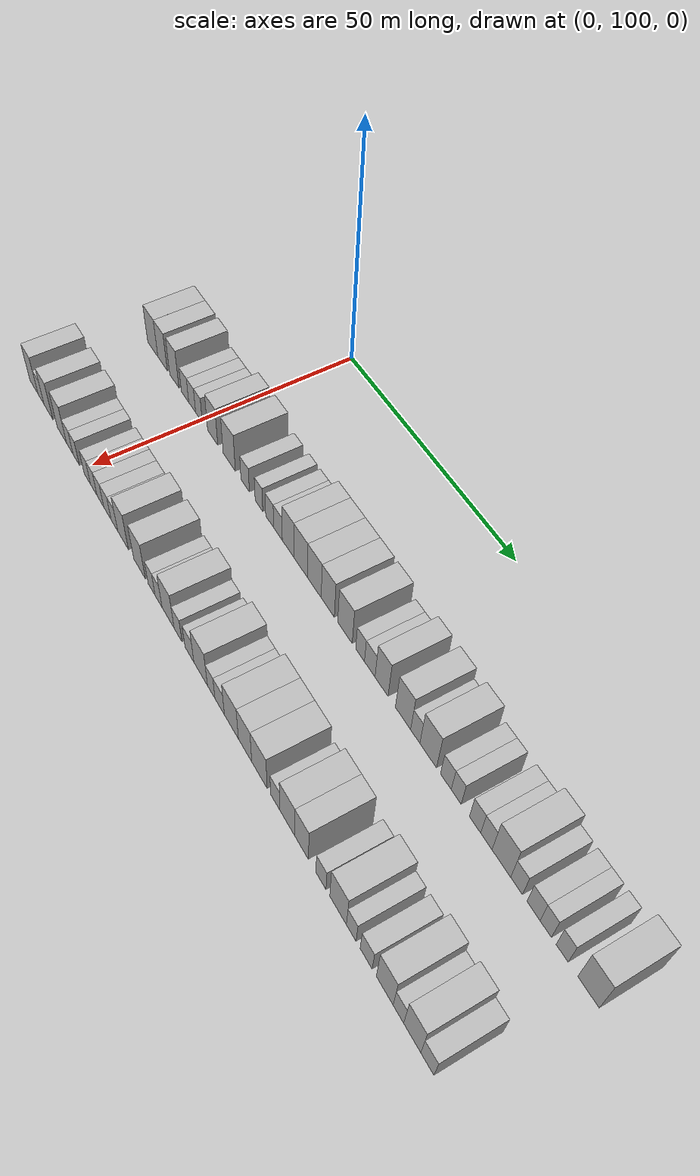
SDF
<sdf version="1.6">
 <world name="default">
  <model name="building_67">
   <static>1</static>
   <pose>25.0000 80.7077 0 0.000000 0.000000 0.000000</pose>
   <link name="link">
    <pose>0 0 4.50 0 0 0</pose>
    <collision name="collision"><geometry><box><size>10.0000 4.2711 9.0000</size></box></geometry></collision>
    <visual name="visual">
     <cast_shadows>0</cast_shadows>
     <geometry><box><size>10.0000 4.2711 9.0000</size></box></geometry>
     <material>
      <script>
       <uri>model://HANNAS_wall/materials/scripts</uri>
       <uri>model://HANNAS_wall/materials/textures</uri>
       <name>vrc/HANNAS_wall</name>
      </script>
     </material>
    </visual>
   </link>
  </model>
  <model name="building_68">
   <static>1</static>
   <pose>25.0000 84.7765 0 0.000000 0.000000 0.000000</pose>
   <link name="link">
    <pose>0 0 4.50 0 0 0</pose>
    <collision name="collision"><geometry><box><size>10.0000 3.8663 9.0000</size></box></geometry></collision>
    <visual name="visual">
     <cast_shadows>0</cast_shadows>
     <geometry><box><size>10.0000 3.8663 9.0000</size></box></geometry>
     <material>
      <script>
       <uri>model://HANNAS_wall/materials/scripts</uri>
       <uri>model://HANNAS_wall/materials/textures</uri>
       <name>vrc/HANNAS_wall</name>
      </script>
     </material>
    </visual>
   </link>
  </model>
  <model name="building_69">
   <static>1</static>
   <pose>25.0000 89.5584 0 0.000000 0.000000 0.000000</pose>
   <link name="link">
    <pose>0 0 4.50 0 0 0</pose>
    <collision name="collision"><geometry><box><size>10.0000 3.6976 9.0000</size></box></geometry></collision>
    <visual name="visual">
     <cast_shadows>0</cast_shadows>
     <geometry><box><size>10.0000 3.6976 9.0000</size></box></geometry>
     <material>
      <script>
       <uri>model://HANNAS_wall/materials/scripts</uri>
       <uri>model://HANNAS_wall/materials/textures</uri>
       <name>vrc/HANNAS_wall</name>
      </script>
     </material>
    </visual>
   </link>
  </model>
  <model name="building_70">
   <static>1</static>
   <pose>25.0000 93.8369 0 0.000000 0.000000 0.000000</pose>
   <link name="link">
    <pose>0 0 3.00 0 0 0</pose>
    <collision name="collision"><geometry><box><size>10.0000 2.8594 6.0000</size></box></geometry></collision>
    <visual name="visual">
     <cast_shadows>0</cast_shadows>
     <geometry><box><size>10.0000 2.8594 6.0000</size></box></geometry>
     <material>
      <script>
       <uri>model://HANNAS_wall/materials/scripts</uri>
       <uri>model://HANNAS_wall/materials/textures</uri>
       <name>vrc/HANNAS_wall</name>
      </script>
     </material>
    </visual>
   </link>
  </model>
  <model name="building_71">
   <static>1</static>
   <pose>25.0000 96.6100 0 0.000000 0.000000 0.000000</pose>
   <link name="link">
    <pose>0 0 3.00 0 0 0</pose>
    <collision name="collision"><geometry><box><size>10.0000 2.6867 6.0000</size></box></geometry></collision>
    <visual name="visual">
     <cast_shadows>0</cast_shadows>
     <geometry><box><size>10.0000 2.6867 6.0000</size></box></geometry>
     <material>
      <script>
       <uri>model://HANNAS_wall/materials/scripts</uri>
       <uri>model://HANNAS_wall/materials/textures</uri>
       <name>vrc/HANNAS_wall</name>
      </script>
     </material>
    </visual>
   </link>
  </model>
  <model name="building_72">
   <static>1</static>
   <pose>25.0000 99.2339 0 0.000000 0.000000 0.000000</pose>
   <link name="link">
    <pose>0 0 3.00 0 0 0</pose>
    <collision name="collision"><geometry><box><size>10.0000 2.5612 6.0000</size></box></geometry></collision>
    <visual name="visual">
     <cast_shadows>0</cast_shadows>
     <geometry><box><size>10.0000 2.5612 6.0000</size></box></geometry>
     <material>
      <script>
       <uri>model://HANNAS_wall/materials/scripts</uri>
       <uri>model://HANNAS_wall/materials/textures</uri>
       <name>vrc/HANNAS_wall</name>
      </script>
     </material>
    </visual>
   </link>
  </model>
  <model name="building_73">
   <static>1</static>
   <pose>25.0000 104.4032 0 0.000000 0.000000 0.000000</pose>
   <link name="link">
    <pose>0 0 4.50 0 0 0</pose>
    <collision name="collision"><geometry><box><size>10.0000 3.7774 9.0000</size></box></geometry></collision>
    <visual name="visual">
     <cast_shadows>0</cast_shadows>
     <geometry><box><size>10.0000 3.7774 9.0000</size></box></geometry>
     <material>
      <script>
       <uri>model://HANNAS_wall/materials/scripts</uri>
       <uri>model://HANNAS_wall/materials/textures</uri>
       <name>vrc/HANNAS_wall</name>
      </script>
     </material>
    </visual>
   </link>
  </model>
  <model name="building_74">
   <static>1</static>
   <pose>25.0000 110.4931 0 0.000000 0.000000 0.000000</pose>
   <link name="link">
    <pose>0 0 4.50 0 0 0</pose>
    <collision name="collision"><geometry><box><size>10.0000 4.4025 9.0000</size></box></geometry></collision>
    <visual name="visual">
     <cast_shadows>0</cast_shadows>
     <geometry><box><size>10.0000 4.4025 9.0000</size></box></geometry>
     <material>
      <script>
       <uri>model://HANNAS_wall/materials/scripts</uri>
       <uri>model://HANNAS_wall/materials/textures</uri>
       <name>vrc/HANNAS_wall</name>
      </script>
     </material>
    </visual>
   </link>
  </model>
  <model name="building_75">
   <static>1</static>
   <pose>25.0000 116.1725 0 0.000000 0.000000 0.000000</pose>
   <link name="link">
    <pose>0 0 3.00 0 0 0</pose>
    <collision name="collision"><geometry><box><size>10.0000 2.9564 6.0000</size></box></geometry></collision>
    <visual name="visual">
     <cast_shadows>0</cast_shadows>
     <geometry><box><size>10.0000 2.9564 6.0000</size></box></geometry>
     <material>
      <script>
       <uri>model://HANNAS_wall/materials/scripts</uri>
       <uri>model://HANNAS_wall/materials/textures</uri>
       <name>vrc/HANNAS_wall</name>
      </script>
     </material>
    </visual>
   </link>
  </model>
  <model name="building_76">
   <static>1</static>
   <pose>25.0000 120.9488 0 0.000000 0.000000 0.000000</pose>
   <link name="link">
    <pose>0 0 3.00 0 0 0</pose>
    <collision name="collision"><geometry><box><size>10.0000 2.5962 6.0000</size></box></geometry></collision>
    <visual name="visual">
     <cast_shadows>0</cast_shadows>
     <geometry><box><size>10.0000 2.5962 6.0000</size></box></geometry>
     <material>
      <script>
       <uri>model://HANNAS_wall/materials/scripts</uri>
       <uri>model://HANNAS_wall/materials/textures</uri>
       <name>vrc/HANNAS_wall</name>
      </script>
     </material>
    </visual>
   </link>
  </model>
  <model name="building_77">
   <static>1</static>
   <pose>25.0000 124.5761 0 0.000000 0.000000 0.000000</pose>
   <link name="link">
    <pose>0 0 3.00 0 0 0</pose>
    <collision name="collision"><geometry><box><size>10.0000 2.6584 6.0000</size></box></geometry></collision>
    <visual name="visual">
     <cast_shadows>0</cast_shadows>
     <geometry><box><size>10.0000 2.6584 6.0000</size></box></geometry>
     <material>
      <script>
       <uri>model://HANNAS_wall/materials/scripts</uri>
       <uri>model://HANNAS_wall/materials/textures</uri>
       <name>vrc/HANNAS_wall</name>
      </script>
     </material>
    </visual>
   </link>
  </model>
  <model name="building_78">
   <static>1</static>
   <pose>25.0000 127.3383 0 0.000000 0.000000 0.000000</pose>
   <link name="link">
    <pose>0 0 3.00 0 0 0</pose>
    <collision name="collision"><geometry><box><size>10.0000 2.8662 6.0000</size></box></geometry></collision>
    <visual name="visual">
     <cast_shadows>0</cast_shadows>
     <geometry><box><size>10.0000 2.8662 6.0000</size></box></geometry>
     <material>
      <script>
       <uri>model://HANNAS_wall/materials/scripts</uri>
       <uri>model://HANNAS_wall/materials/textures</uri>
       <name>vrc/HANNAS_wall</name>
      </script>
     </material>
    </visual>
   </link>
  </model>
  <model name="building_79">
   <static>1</static>
   <pose>25.0000 130.6202 0 0.000000 0.000000 0.000000</pose>
   <link name="link">
    <pose>0 0 4.50 0 0 0</pose>
    <collision name="collision"><geometry><box><size>10.0000 3.6975 9.0000</size></box></geometry></collision>
    <visual name="visual">
     <cast_shadows>0</cast_shadows>
     <geometry><box><size>10.0000 3.6975 9.0000</size></box></geometry>
     <material>
      <script>
       <uri>model://HANNAS_wall/materials/scripts</uri>
       <uri>model://HANNAS_wall/materials/textures</uri>
       <name>vrc/HANNAS_wall</name>
      </script>
     </material>
    </visual>
   </link>
  </model>
  <model name="building_80">
   <static>1</static>
   <pose>25.0000 134.6541 0 0.000000 0.000000 0.000000</pose>
   <link name="link">
    <pose>0 0 4.50 0 0 0</pose>
    <collision name="collision"><geometry><box><size>10.0000 4.3703 9.0000</size></box></geometry></collision>
    <visual name="visual">
     <cast_shadows>0</cast_shadows>
     <geometry><box><size>10.0000 4.3703 9.0000</size></box></geometry>
     <material>
      <script>
       <uri>model://HANNAS_wall/materials/scripts</uri>
       <uri>model://HANNAS_wall/materials/textures</uri>
       <name>vrc/HANNAS_wall</name>
      </script>
     </material>
    </visual>
   </link>
  </model>
  <model name="building_81">
   <static>1</static>
   <pose>25.0000 138.9686 0 0.000000 0.000000 0.000000</pose>
   <link name="link">
    <pose>0 0 4.50 0 0 0</pose>
    <collision name="collision"><geometry><box><size>10.0000 4.2588 9.0000</size></box></geometry></collision>
    <visual name="visual">
     <cast_shadows>0</cast_shadows>
     <geometry><box><size>10.0000 4.2588 9.0000</size></box></geometry>
     <material>
      <script>
       <uri>model://HANNAS_wall/materials/scripts</uri>
       <uri>model://HANNAS_wall/materials/textures</uri>
       <name>vrc/HANNAS_wall</name>
      </script>
     </material>
    </visual>
   </link>
  </model>
  <model name="building_82">
   <static>1</static>
   <pose>25.0000 143.0989 0 0.000000 0.000000 0.000000</pose>
   <link name="link">
    <pose>0 0 4.50 0 0 0</pose>
    <collision name="collision"><geometry><box><size>10.0000 4.0017 9.0000</size></box></geometry></collision>
    <visual name="visual">
     <cast_shadows>0</cast_shadows>
     <geometry><box><size>10.0000 4.0017 9.0000</size></box></geometry>
     <material>
      <script>
       <uri>model://HANNAS_wall/materials/scripts</uri>
       <uri>model://HANNAS_wall/materials/textures</uri>
       <name>vrc/HANNAS_wall</name>
      </script>
     </material>
    </visual>
   </link>
  </model>
  <model name="building_83">
   <static>1</static>
   <pose>25.0000 148.2334 0 0.000000 0.000000 0.000000</pose>
   <link name="link">
    <pose>0 0 4.50 0 0 0</pose>
    <collision name="collision"><geometry><box><size>10.0000 4.2673 9.0000</size></box></geometry></collision>
    <visual name="visual">
     <cast_shadows>0</cast_shadows>
     <geometry><box><size>10.0000 4.2673 9.0000</size></box></geometry>
     <material>
      <script>
       <uri>model://HANNAS_wall/materials/scripts</uri>
       <uri>model://HANNAS_wall/materials/textures</uri>
       <name>vrc/HANNAS_wall</name>
      </script>
     </material>
    </visual>
   </link>
  </model>
  <model name="building_84">
   <static>1</static>
   <pose>25.0000 152.6312 0 0.000000 0.000000 0.000000</pose>
   <link name="link">
    <pose>0 0 3.00 0 0 0</pose>
    <collision name="collision"><geometry><box><size>10.0000 2.5284 6.0000</size></box></geometry></collision>
    <visual name="visual">
     <cast_shadows>0</cast_shadows>
     <geometry><box><size>10.0000 2.5284 6.0000</size></box></geometry>
     <material>
      <script>
       <uri>model://HANNAS_wall/materials/scripts</uri>
       <uri>model://HANNAS_wall/materials/textures</uri>
       <name>vrc/HANNAS_wall</name>
      </script>
     </material>
    </visual>
   </link>
  </model>
  <model name="building_85">
   <static>1</static>
   <pose>25.0000 155.3830 0 0.000000 0.000000 0.000000</pose>
   <link name="link">
    <pose>0 0 3.00 0 0 0</pose>
    <collision name="collision"><geometry><box><size>10.0000 2.9752 6.0000</size></box></geometry></collision>
    <visual name="visual">
     <cast_shadows>0</cast_shadows>
     <geometry><box><size>10.0000 2.9752 6.0000</size></box></geometry>
     <material>
      <script>
       <uri>model://HANNAS_wall/materials/scripts</uri>
       <uri>model://HANNAS_wall/materials/textures</uri>
       <name>vrc/HANNAS_wall</name>
      </script>
     </material>
    </visual>
   </link>
  </model>
  <model name="building_86">
   <static>1</static>
   <pose>25.0000 158.6770 0 0.000000 0.000000 0.000000</pose>
   <link name="link">
    <pose>0 0 4.50 0 0 0</pose>
    <collision name="collision"><geometry><box><size>10.0000 3.6129 9.0000</size></box></geometry></collision>
    <visual name="visual">
     <cast_shadows>0</cast_shadows>
     <geometry><box><size>10.0000 3.6129 9.0000</size></box></geometry>
     <material>
      <script>
       <uri>model://HANNAS_wall/materials/scripts</uri>
       <uri>model://HANNAS_wall/materials/textures</uri>
       <name>vrc/HANNAS_wall</name>
      </script>
     </material>
    </visual>
   </link>
  </model>
  <model name="building_87">
   <static>1</static>
   <pose>25.0000 164.5211 0 0.000000 0.000000 0.000000</pose>
   <link name="link">
    <pose>0 0 4.50 0 0 0</pose>
    <collision name="collision"><geometry><box><size>10.0000 4.0754 9.0000</size></box></geometry></collision>
    <visual name="visual">
     <cast_shadows>0</cast_shadows>
     <geometry><box><size>10.0000 4.0754 9.0000</size></box></geometry>
     <material>
      <script>
       <uri>model://HANNAS_wall/materials/scripts</uri>
       <uri>model://HANNAS_wall/materials/textures</uri>
       <name>vrc/HANNAS_wall</name>
      </script>
     </material>
    </visual>
   </link>
  </model>
  <model name="building_88">
   <static>1</static>
   <pose>25.0000 167.7697 0 0.000000 0.000000 0.000000</pose>
   <link name="link">
    <pose>0 0 3.00 0 0 0</pose>
    <collision name="collision"><geometry><box><size>10.0000 2.4216 6.0000</size></box></geometry></collision>
    <visual name="visual">
     <cast_shadows>0</cast_shadows>
     <geometry><box><size>10.0000 2.4216 6.0000</size></box></geometry>
     <material>
      <script>
       <uri>model://HANNAS_wall/materials/scripts</uri>
       <uri>model://HANNAS_wall/materials/textures</uri>
       <name>vrc/HANNAS_wall</name>
      </script>
     </material>
    </visual>
   </link>
  </model>
  <model name="building_89">
   <static>1</static>
   <pose>25.0000 171.1131 0 0.000000 0.000000 0.000000</pose>
   <link name="link">
    <pose>0 0 4.50 0 0 0</pose>
    <collision name="collision"><geometry><box><size>10.0000 4.2653 9.0000</size></box></geometry></collision>
    <visual name="visual">
     <cast_shadows>0</cast_shadows>
     <geometry><box><size>10.0000 4.2653 9.0000</size></box></geometry>
     <material>
      <script>
       <uri>model://HANNAS_wall/materials/scripts</uri>
       <uri>model://HANNAS_wall/materials/textures</uri>
       <name>vrc/HANNAS_wall</name>
      </script>
     </material>
    </visual>
   </link>
  </model>
  <model name="building_90">
   <static>1</static>
   <pose>25.0000 175.5952 0 0.000000 0.000000 0.000000</pose>
   <link name="link">
    <pose>0 0 3.00 0 0 0</pose>
    <collision name="collision"><geometry><box><size>10.0000 2.6990 6.0000</size></box></geometry></collision>
    <visual name="visual">
     <cast_shadows>0</cast_shadows>
     <geometry><box><size>10.0000 2.6990 6.0000</size></box></geometry>
     <material>
      <script>
       <uri>model://HANNAS_wall/materials/scripts</uri>
       <uri>model://HANNAS_wall/materials/textures</uri>
       <name>vrc/HANNAS_wall</name>
      </script>
     </material>
    </visual>
   </link>
  </model>
  <model name="building_91">
   <static>1</static>
   <pose>25.0000 178.1671 0 0.000000 0.000000 0.000000</pose>
   <link name="link">
    <pose>0 0 3.00 0 0 0</pose>
    <collision name="collision"><geometry><box><size>10.0000 2.4448 6.0000</size></box></geometry></collision>
    <visual name="visual">
     <cast_shadows>0</cast_shadows>
     <geometry><box><size>10.0000 2.4448 6.0000</size></box></geometry>
     <material>
      <script>
       <uri>model://HANNAS_wall/materials/scripts</uri>
       <uri>model://HANNAS_wall/materials/textures</uri>
       <name>vrc/HANNAS_wall</name>
      </script>
     </material>
    </visual>
   </link>
  </model>
  <model name="building_92">
   <static>1</static>
   <pose>25.0000 182.7265 0 0.000000 0.000000 0.000000</pose>
   <link name="link">
    <pose>0 0 3.00 0 0 0</pose>
    <collision name="collision"><geometry><box><size>10.0000 2.6738 6.0000</size></box></geometry></collision>
    <visual name="visual">
     <cast_shadows>0</cast_shadows>
     <geometry><box><size>10.0000 2.6738 6.0000</size></box></geometry>
     <material>
      <script>
       <uri>model://HANNAS_wall/materials/scripts</uri>
       <uri>model://HANNAS_wall/materials/textures</uri>
       <name>vrc/HANNAS_wall</name>
      </script>
     </material>
    </visual>
   </link>
  </model>
  <model name="building_93">
   <static>1</static>
   <pose>25.0000 185.3960 0 0.000000 0.000000 0.000000</pose>
   <link name="link">
    <pose>0 0 3.00 0 0 0</pose>
    <collision name="collision"><geometry><box><size>10.0000 2.6652 6.0000</size></box></geometry></collision>
    <visual name="visual">
     <cast_shadows>0</cast_shadows>
     <geometry><box><size>10.0000 2.6652 6.0000</size></box></geometry>
     <material>
      <script>
       <uri>model://HANNAS_wall/materials/scripts</uri>
       <uri>model://HANNAS_wall/materials/textures</uri>
       <name>vrc/HANNAS_wall</name>
      </script>
     </material>
    </visual>
   </link>
  </model>
  <model name="building_94">
   <static>1</static>
   <pose>25.0000 188.8733 0 0.000000 0.000000 0.000000</pose>
   <link name="link">
    <pose>0 0 4.50 0 0 0</pose>
    <collision name="collision"><geometry><box><size>10.0000 4.2894 9.0000</size></box></geometry></collision>
    <visual name="visual">
     <cast_shadows>0</cast_shadows>
     <geometry><box><size>10.0000 4.2894 9.0000</size></box></geometry>
     <material>
      <script>
       <uri>model://HANNAS_wall/materials/scripts</uri>
       <uri>model://HANNAS_wall/materials/textures</uri>
       <name>vrc/HANNAS_wall</name>
      </script>
     </material>
    </visual>
   </link>
  </model>
  <model name="building_95">
   <static>1</static>
   <pose>25.0000 192.3362 0 0.000000 0.000000 0.000000</pose>
   <link name="link">
    <pose>0 0 3.00 0 0 0</pose>
    <collision name="collision"><geometry><box><size>10.0000 2.6363 6.0000</size></box></geometry></collision>
    <visual name="visual">
     <cast_shadows>0</cast_shadows>
     <geometry><box><size>10.0000 2.6363 6.0000</size></box></geometry>
     <material>
      <script>
       <uri>model://HANNAS_wall/materials/scripts</uri>
       <uri>model://HANNAS_wall/materials/textures</uri>
       <name>vrc/HANNAS_wall</name>
      </script>
     </material>
    </visual>
   </link>
  </model>
  <model name="building_96">
   <static>1</static>
   <pose>25.0000 196.0877 0 0.000000 0.000000 0.000000</pose>
   <link name="link">
    <pose>0 0 3.00 0 0 0</pose>
    <collision name="collision"><geometry><box><size>10.0000 2.8668 6.0000</size></box></geometry></collision>
    <visual name="visual">
     <cast_shadows>0</cast_shadows>
     <geometry><box><size>10.0000 2.8668 6.0000</size></box></geometry>
     <material>
      <script>
       <uri>model://HANNAS_wall/materials/scripts</uri>
       <uri>model://HANNAS_wall/materials/textures</uri>
       <name>vrc/HANNAS_wall</name>
      </script>
     </material>
    </visual>
   </link>
  </model>
  <model name="building_97">
   <static>1</static>
   <pose>25.0000 198.7425 0 0.000000 0.000000 0.000000</pose>
   <link name="link">
    <pose>0 0 3.00 0 0 0</pose>
    <collision name="collision"><geometry><box><size>10.0000 2.4428 6.0000</size></box></geometry></collision>
    <visual name="visual">
     <cast_shadows>0</cast_shadows>
     <geometry><box><size>10.0000 2.4428 6.0000</size></box></geometry>
     <material>
      <script>
       <uri>model://HANNAS_wall/materials/scripts</uri>
       <uri>model://HANNAS_wall/materials/textures</uri>
       <name>vrc/HANNAS_wall</name>
      </script>
     </material>
    </visual>
   </link>
  </model>
  <model name="building_98">
   <static>1</static>
   <pose>25.0000 202.2255 0 0.000000 0.000000 0.000000</pose>
   <link name="link">
    <pose>0 0 3.00 0 0 0</pose>
    <collision name="collision"><geometry><box><size>10.0000 2.5232 6.0000</size></box></geometry></collision>
    <visual name="visual">
     <cast_shadows>0</cast_shadows>
     <geometry><box><size>10.0000 2.5232 6.0000</size></box></geometry>
     <material>
      <script>
       <uri>model://HANNAS_wall/materials/scripts</uri>
       <uri>model://HANNAS_wall/materials/textures</uri>
       <name>vrc/HANNAS_wall</name>
      </script>
     </material>
    </visual>
   </link>
  </model>
  <model name="building_99">
   <static>1</static>
   <pose>25.0000 207.6533 0 0.000000 0.000000 0.000000</pose>
   <link name="link">
    <pose>0 0 4.50 0 0 0</pose>
    <collision name="collision"><geometry><box><size>10.0000 4.3324 9.0000</size></box></geometry></collision>
    <visual name="visual">
     <cast_shadows>0</cast_shadows>
     <geometry><box><size>10.0000 4.3324 9.0000</size></box></geometry>
     <material>
      <script>
       <uri>model://HANNAS_wall/materials/scripts</uri>
       <uri>model://HANNAS_wall/materials/textures</uri>
       <name>vrc/HANNAS_wall</name>
      </script>
     </material>
    </visual>
   </link>
  </model>
  <model name="building_169">
   <static>1</static>
   <pose>47.0000 78.9601 0 0.000000 0.000000 0.000000</pose>
   <link name="link">
    <pose>0 0 4.50 0 0 0</pose>
    <collision name="collision"><geometry><box><size>10.0000 3.8229 9.0000</size></box></geometry></collision>
    <visual name="visual">
     <cast_shadows>0</cast_shadows>
     <geometry><box><size>10.0000 3.8229 9.0000</size></box></geometry>
     <material>
      <script>
       <uri>model://HANNAS_wall/materials/scripts</uri>
       <uri>model://HANNAS_wall/materials/textures</uri>
       <name>vrc/HANNAS_wall</name>
      </script>
     </material>
    </visual>
   </link>
  </model>
  <model name="building_170">
   <static>1</static>
   <pose>47.0000 82.2435 0 0.000000 0.000000 0.000000</pose>
   <link name="link">
    <pose>0 0 3.00 0 0 0</pose>
    <collision name="collision"><geometry><box><size>10.0000 2.7437 6.0000</size></box></geometry></collision>
    <visual name="visual">
     <cast_shadows>0</cast_shadows>
     <geometry><box><size>10.0000 2.7437 6.0000</size></box></geometry>
     <material>
      <script>
       <uri>model://HANNAS_wall/materials/scripts</uri>
       <uri>model://HANNAS_wall/materials/textures</uri>
       <name>vrc/HANNAS_wall</name>
      </script>
     </material>
    </visual>
   </link>
  </model>
  <model name="building_171">
   <static>1</static>
   <pose>47.0000 85.5752 0 0.000000 0.000000 0.000000</pose>
   <link name="link">
    <pose>0 0 4.50 0 0 0</pose>
    <collision name="collision"><geometry><box><size>10.0000 3.9197 9.0000</size></box></geometry></collision>
    <visual name="visual">
     <cast_shadows>0</cast_shadows>
     <geometry><box><size>10.0000 3.9197 9.0000</size></box></geometry>
     <material>
      <script>
       <uri>model://HANNAS_wall/materials/scripts</uri>
       <uri>model://HANNAS_wall/materials/textures</uri>
       <name>vrc/HANNAS_wall</name>
      </script>
     </material>
    </visual>
   </link>
  </model>
  <model name="building_172">
   <static>1</static>
   <pose>47.0000 91.5517 0 0.000000 0.000000 0.000000</pose>
   <link name="link">
    <pose>0 0 4.50 0 0 0</pose>
    <collision name="collision"><geometry><box><size>10.0000 4.0333 9.0000</size></box></geometry></collision>
    <visual name="visual">
     <cast_shadows>0</cast_shadows>
     <geometry><box><size>10.0000 4.0333 9.0000</size></box></geometry>
     <material>
      <script>
       <uri>model://HANNAS_wall/materials/scripts</uri>
       <uri>model://HANNAS_wall/materials/textures</uri>
       <name>vrc/HANNAS_wall</name>
      </script>
     </material>
    </visual>
   </link>
  </model>
  <model name="building_173">
   <static>1</static>
   <pose>47.0000 94.9659 0 0.000000 0.000000 0.000000</pose>
   <link name="link">
    <pose>0 0 3.00 0 0 0</pose>
    <collision name="collision"><geometry><box><size>10.0000 2.7952 6.0000</size></box></geometry></collision>
    <visual name="visual">
     <cast_shadows>0</cast_shadows>
     <geometry><box><size>10.0000 2.7952 6.0000</size></box></geometry>
     <material>
      <script>
       <uri>model://HANNAS_wall/materials/scripts</uri>
       <uri>model://HANNAS_wall/materials/textures</uri>
       <name>vrc/HANNAS_wall</name>
      </script>
     </material>
    </visual>
   </link>
  </model>
  <model name="building_174">
   <static>1</static>
   <pose>47.0000 97.6841 0 0.000000 0.000000 0.000000</pose>
   <link name="link">
    <pose>0 0 3.00 0 0 0</pose>
    <collision name="collision"><geometry><box><size>10.0000 2.6411 6.0000</size></box></geometry></collision>
    <visual name="visual">
     <cast_shadows>0</cast_shadows>
     <geometry><box><size>10.0000 2.6411 6.0000</size></box></geometry>
     <material>
      <script>
       <uri>model://HANNAS_wall/materials/scripts</uri>
       <uri>model://HANNAS_wall/materials/textures</uri>
       <name>vrc/HANNAS_wall</name>
      </script>
     </material>
    </visual>
   </link>
  </model>
  <model name="building_175">
   <static>1</static>
   <pose>47.0000 102.3219 0 0.000000 0.000000 0.000000</pose>
   <link name="link">
    <pose>0 0 3.00 0 0 0</pose>
    <collision name="collision"><geometry><box><size>10.0000 2.6346 6.0000</size></box></geometry></collision>
    <visual name="visual">
     <cast_shadows>0</cast_shadows>
     <geometry><box><size>10.0000 2.6346 6.0000</size></box></geometry>
     <material>
      <script>
       <uri>model://HANNAS_wall/materials/scripts</uri>
       <uri>model://HANNAS_wall/materials/textures</uri>
       <name>vrc/HANNAS_wall</name>
      </script>
     </material>
    </visual>
   </link>
  </model>
  <model name="building_176">
   <static>1</static>
   <pose>47.0000 104.9798 0 0.000000 0.000000 0.000000</pose>
   <link name="link">
    <pose>0 0 3.00 0 0 0</pose>
    <collision name="collision"><geometry><box><size>10.0000 2.6811 6.0000</size></box></geometry></collision>
    <visual name="visual">
     <cast_shadows>0</cast_shadows>
     <geometry><box><size>10.0000 2.6811 6.0000</size></box></geometry>
     <material>
      <script>
       <uri>model://HANNAS_wall/materials/scripts</uri>
       <uri>model://HANNAS_wall/materials/textures</uri>
       <name>vrc/HANNAS_wall</name>
      </script>
     </material>
    </visual>
   </link>
  </model>
  <model name="building_177">
   <static>1</static>
   <pose>47.0000 107.6602 0 0.000000 0.000000 0.000000</pose>
   <link name="link">
    <pose>0 0 3.00 0 0 0</pose>
    <collision name="collision"><geometry><box><size>10.0000 2.6797 6.0000</size></box></geometry></collision>
    <visual name="visual">
     <cast_shadows>0</cast_shadows>
     <geometry><box><size>10.0000 2.6797 6.0000</size></box></geometry>
     <material>
      <script>
       <uri>model://HANNAS_wall/materials/scripts</uri>
       <uri>model://HANNAS_wall/materials/textures</uri>
       <name>vrc/HANNAS_wall</name>
      </script>
     </material>
    </visual>
   </link>
  </model>
  <model name="building_178">
   <static>1</static>
   <pose>47.0000 110.4687 0 0.000000 0.000000 0.000000</pose>
   <link name="link">
    <pose>0 0 3.00 0 0 0</pose>
    <collision name="collision"><geometry><box><size>10.0000 2.9374 6.0000</size></box></geometry></collision>
    <visual name="visual">
     <cast_shadows>0</cast_shadows>
     <geometry><box><size>10.0000 2.9374 6.0000</size></box></geometry>
     <material>
      <script>
       <uri>model://HANNAS_wall/materials/scripts</uri>
       <uri>model://HANNAS_wall/materials/textures</uri>
       <name>vrc/HANNAS_wall</name>
      </script>
     </material>
    </visual>
   </link>
  </model>
  <model name="building_179">
   <static>1</static>
   <pose>47.0000 113.2353 0 0.000000 0.000000 0.000000</pose>
   <link name="link">
    <pose>0 0 3.00 0 0 0</pose>
    <collision name="collision"><geometry><box><size>10.0000 2.5957 6.0000</size></box></geometry></collision>
    <visual name="visual">
     <cast_shadows>0</cast_shadows>
     <geometry><box><size>10.0000 2.5957 6.0000</size></box></geometry>
     <material>
      <script>
       <uri>model://HANNAS_wall/materials/scripts</uri>
       <uri>model://HANNAS_wall/materials/textures</uri>
       <name>vrc/HANNAS_wall</name>
      </script>
     </material>
    </visual>
   </link>
  </model>
  <model name="building_180">
   <static>1</static>
   <pose>47.0000 116.5673 0 0.000000 0.000000 0.000000</pose>
   <link name="link">
    <pose>0 0 4.50 0 0 0</pose>
    <collision name="collision"><geometry><box><size>10.0000 4.0683 9.0000</size></box></geometry></collision>
    <visual name="visual">
     <cast_shadows>0</cast_shadows>
     <geometry><box><size>10.0000 4.0683 9.0000</size></box></geometry>
     <material>
      <script>
       <uri>model://HANNAS_wall/materials/scripts</uri>
       <uri>model://HANNAS_wall/materials/textures</uri>
       <name>vrc/HANNAS_wall</name>
      </script>
     </material>
    </visual>
   </link>
  </model>
  <model name="building_181">
   <static>1</static>
   <pose>47.0000 122.7485 0 0.000000 0.000000 0.000000</pose>
   <link name="link">
    <pose>0 0 4.50 0 0 0</pose>
    <collision name="collision"><geometry><box><size>10.0000 4.2939 9.0000</size></box></geometry></collision>
    <visual name="visual">
     <cast_shadows>0</cast_shadows>
     <geometry><box><size>10.0000 4.2939 9.0000</size></box></geometry>
     <material>
      <script>
       <uri>model://HANNAS_wall/materials/scripts</uri>
       <uri>model://HANNAS_wall/materials/textures</uri>
       <name>vrc/HANNAS_wall</name>
      </script>
     </material>
    </visual>
   </link>
  </model>
  <model name="building_182">
   <static>1</static>
   <pose>47.0000 127.1565 0 0.000000 0.000000 0.000000</pose>
   <link name="link">
    <pose>0 0 3.00 0 0 0</pose>
    <collision name="collision"><geometry><box><size>10.0000 2.5221 6.0000</size></box></geometry></collision>
    <visual name="visual">
     <cast_shadows>0</cast_shadows>
     <geometry><box><size>10.0000 2.5221 6.0000</size></box></geometry>
     <material>
      <script>
       <uri>model://HANNAS_wall/materials/scripts</uri>
       <uri>model://HANNAS_wall/materials/textures</uri>
       <name>vrc/HANNAS_wall</name>
      </script>
     </material>
    </visual>
   </link>
  </model>
  <model name="building_183">
   <static>1</static>
   <pose>47.0000 129.6504 0 0.000000 0.000000 0.000000</pose>
   <link name="link">
    <pose>0 0 3.00 0 0 0</pose>
    <collision name="collision"><geometry><box><size>10.0000 2.4658 6.0000</size></box></geometry></collision>
    <visual name="visual">
     <cast_shadows>0</cast_shadows>
     <geometry><box><size>10.0000 2.4658 6.0000</size></box></geometry>
     <material>
      <script>
       <uri>model://HANNAS_wall/materials/scripts</uri>
       <uri>model://HANNAS_wall/materials/textures</uri>
       <name>vrc/HANNAS_wall</name>
      </script>
     </material>
    </visual>
   </link>
  </model>
  <model name="building_184">
   <static>1</static>
   <pose>47.0000 132.9871 0 0.000000 0.000000 0.000000</pose>
   <link name="link">
    <pose>0 0 4.50 0 0 0</pose>
    <collision name="collision"><geometry><box><size>10.0000 4.2076 9.0000</size></box></geometry></collision>
    <visual name="visual">
     <cast_shadows>0</cast_shadows>
     <geometry><box><size>10.0000 4.2076 9.0000</size></box></geometry>
     <material>
      <script>
       <uri>model://HANNAS_wall/materials/scripts</uri>
       <uri>model://HANNAS_wall/materials/textures</uri>
       <name>vrc/HANNAS_wall</name>
      </script>
     </material>
    </visual>
   </link>
  </model>
  <model name="building_185">
   <static>1</static>
   <pose>47.0000 136.4471 0 0.000000 0.000000 0.000000</pose>
   <link name="link">
    <pose>0 0 3.00 0 0 0</pose>
    <collision name="collision"><geometry><box><size>10.0000 2.7123 6.0000</size></box></geometry></collision>
    <visual name="visual">
     <cast_shadows>0</cast_shadows>
     <geometry><box><size>10.0000 2.7123 6.0000</size></box></geometry>
     <material>
      <script>
       <uri>model://HANNAS_wall/materials/scripts</uri>
       <uri>model://HANNAS_wall/materials/textures</uri>
       <name>vrc/HANNAS_wall</name>
      </script>
     </material>
    </visual>
   </link>
  </model>
  <model name="building_186">
   <static>1</static>
   <pose>47.0000 140.2958 0 0.000000 0.000000 0.000000</pose>
   <link name="link">
    <pose>0 0 3.00 0 0 0</pose>
    <collision name="collision"><geometry><box><size>10.0000 2.9852 6.0000</size></box></geometry></collision>
    <visual name="visual">
     <cast_shadows>0</cast_shadows>
     <geometry><box><size>10.0000 2.9852 6.0000</size></box></geometry>
     <material>
      <script>
       <uri>model://HANNAS_wall/materials/scripts</uri>
       <uri>model://HANNAS_wall/materials/textures</uri>
       <name>vrc/HANNAS_wall</name>
      </script>
     </material>
    </visual>
   </link>
  </model>
  <model name="building_187">
   <static>1</static>
   <pose>47.0000 144.0022 0 0.000000 0.000000 0.000000</pose>
   <link name="link">
    <pose>0 0 4.50 0 0 0</pose>
    <collision name="collision"><geometry><box><size>10.0000 4.4275 9.0000</size></box></geometry></collision>
    <visual name="visual">
     <cast_shadows>0</cast_shadows>
     <geometry><box><size>10.0000 4.4275 9.0000</size></box></geometry>
     <material>
      <script>
       <uri>model://HANNAS_wall/materials/scripts</uri>
       <uri>model://HANNAS_wall/materials/textures</uri>
       <name>vrc/HANNAS_wall</name>
      </script>
     </material>
    </visual>
   </link>
  </model>
  <model name="building_188">
   <static>1</static>
   <pose>47.0000 147.4245 0 0.000000 0.000000 0.000000</pose>
   <link name="link">
    <pose>0 0 3.00 0 0 0</pose>
    <collision name="collision"><geometry><box><size>10.0000 2.4172 6.0000</size></box></geometry></collision>
    <visual name="visual">
     <cast_shadows>0</cast_shadows>
     <geometry><box><size>10.0000 2.4172 6.0000</size></box></geometry>
     <material>
      <script>
       <uri>model://HANNAS_wall/materials/scripts</uri>
       <uri>model://HANNAS_wall/materials/textures</uri>
       <name>vrc/HANNAS_wall</name>
      </script>
     </material>
    </visual>
   </link>
  </model>
  <model name="building_189">
   <static>1</static>
   <pose>47.0000 150.1275 0 0.000000 0.000000 0.000000</pose>
   <link name="link">
    <pose>0 0 3.00 0 0 0</pose>
    <collision name="collision"><geometry><box><size>10.0000 2.9888 6.0000</size></box></geometry></collision>
    <visual name="visual">
     <cast_shadows>0</cast_shadows>
     <geometry><box><size>10.0000 2.9888 6.0000</size></box></geometry>
     <material>
      <script>
       <uri>model://HANNAS_wall/materials/scripts</uri>
       <uri>model://HANNAS_wall/materials/textures</uri>
       <name>vrc/HANNAS_wall</name>
      </script>
     </material>
    </visual>
   </link>
  </model>
  <model name="building_190">
   <static>1</static>
   <pose>47.0000 153.7839 0 0.000000 0.000000 0.000000</pose>
   <link name="link">
    <pose>0 0 4.50 0 0 0</pose>
    <collision name="collision"><geometry><box><size>10.0000 4.3240 9.0000</size></box></geometry></collision>
    <visual name="visual">
     <cast_shadows>0</cast_shadows>
     <geometry><box><size>10.0000 4.3240 9.0000</size></box></geometry>
     <material>
      <script>
       <uri>model://HANNAS_wall/materials/scripts</uri>
       <uri>model://HANNAS_wall/materials/textures</uri>
       <name>vrc/HANNAS_wall</name>
      </script>
     </material>
    </visual>
   </link>
  </model>
  <model name="building_191">
   <static>1</static>
   <pose>47.0000 157.9529 0 0.000000 0.000000 0.000000</pose>
   <link name="link">
    <pose>0 0 4.50 0 0 0</pose>
    <collision name="collision"><geometry><box><size>10.0000 4.0140 9.0000</size></box></geometry></collision>
    <visual name="visual">
     <cast_shadows>0</cast_shadows>
     <geometry><box><size>10.0000 4.0140 9.0000</size></box></geometry>
     <material>
      <script>
       <uri>model://HANNAS_wall/materials/scripts</uri>
       <uri>model://HANNAS_wall/materials/textures</uri>
       <name>vrc/HANNAS_wall</name>
      </script>
     </material>
    </visual>
   </link>
  </model>
  <model name="building_192">
   <static>1</static>
   <pose>47.0000 162.2071 0 0.000000 0.000000 0.000000</pose>
   <link name="link">
    <pose>0 0 4.50 0 0 0</pose>
    <collision name="collision"><geometry><box><size>10.0000 4.4943 9.0000</size></box></geometry></collision>
    <visual name="visual">
     <cast_shadows>0</cast_shadows>
     <geometry><box><size>10.0000 4.4943 9.0000</size></box></geometry>
     <material>
      <script>
       <uri>model://HANNAS_wall/materials/scripts</uri>
       <uri>model://HANNAS_wall/materials/textures</uri>
       <name>vrc/HANNAS_wall</name>
      </script>
     </material>
    </visual>
   </link>
  </model>
  <model name="building_193">
   <static>1</static>
   <pose>47.0000 166.7714 0 0.000000 0.000000 0.000000</pose>
   <link name="link">
    <pose>0 0 3.00 0 0 0</pose>
    <collision name="collision"><geometry><box><size>10.0000 2.6345 6.0000</size></box></geometry></collision>
    <visual name="visual">
     <cast_shadows>0</cast_shadows>
     <geometry><box><size>10.0000 2.6345 6.0000</size></box></geometry>
     <material>
      <script>
       <uri>model://HANNAS_wall/materials/scripts</uri>
       <uri>model://HANNAS_wall/materials/textures</uri>
       <name>vrc/HANNAS_wall</name>
      </script>
     </material>
    </visual>
   </link>
  </model>
  <model name="building_194">
   <static>1</static>
   <pose>47.0000 170.1755 0 0.000000 0.000000 0.000000</pose>
   <link name="link">
    <pose>0 0 4.50 0 0 0</pose>
    <collision name="collision"><geometry><box><size>10.0000 4.1737 9.0000</size></box></geometry></collision>
    <visual name="visual">
     <cast_shadows>0</cast_shadows>
     <geometry><box><size>10.0000 4.1737 9.0000</size></box></geometry>
     <material>
      <script>
       <uri>model://HANNAS_wall/materials/scripts</uri>
       <uri>model://HANNAS_wall/materials/textures</uri>
       <name>vrc/HANNAS_wall</name>
      </script>
     </material>
    </visual>
   </link>
  </model>
  <model name="building_195">
   <static>1</static>
   <pose>47.0000 174.1067 0 0.000000 0.000000 0.000000</pose>
   <link name="link">
    <pose>0 0 4.50 0 0 0</pose>
    <collision name="collision"><geometry><box><size>10.0000 3.6888 9.0000</size></box></geometry></collision>
    <visual name="visual">
     <cast_shadows>0</cast_shadows>
     <geometry><box><size>10.0000 3.6888 9.0000</size></box></geometry>
     <material>
      <script>
       <uri>model://HANNAS_wall/materials/scripts</uri>
       <uri>model://HANNAS_wall/materials/textures</uri>
       <name>vrc/HANNAS_wall</name>
      </script>
     </material>
    </visual>
   </link>
  </model>
  <model name="building_196">
   <static>1</static>
   <pose>47.0000 179.2766 0 0.000000 0.000000 0.000000</pose>
   <link name="link">
    <pose>0 0 3.00 0 0 0</pose>
    <collision name="collision"><geometry><box><size>10.0000 2.6508 6.0000</size></box></geometry></collision>
    <visual name="visual">
     <cast_shadows>0</cast_shadows>
     <geometry><box><size>10.0000 2.6508 6.0000</size></box></geometry>
     <material>
      <script>
       <uri>model://HANNAS_wall/materials/scripts</uri>
       <uri>model://HANNAS_wall/materials/textures</uri>
       <name>vrc/HANNAS_wall</name>
      </script>
     </material>
    </visual>
   </link>
  </model>
  <model name="building_197">
   <static>1</static>
   <pose>47.0000 183.7182 0 0.000000 0.000000 0.000000</pose>
   <link name="link">
    <pose>0 0 4.50 0 0 0</pose>
    <collision name="collision"><geometry><box><size>10.0000 4.2324 9.0000</size></box></geometry></collision>
    <visual name="visual">
     <cast_shadows>0</cast_shadows>
     <geometry><box><size>10.0000 4.2324 9.0000</size></box></geometry>
     <material>
      <script>
       <uri>model://HANNAS_wall/materials/scripts</uri>
       <uri>model://HANNAS_wall/materials/textures</uri>
       <name>vrc/HANNAS_wall</name>
      </script>
     </material>
    </visual>
   </link>
  </model>
  <model name="building_198">
   <static>1</static>
   <pose>47.0000 187.0415 0 0.000000 0.000000 0.000000</pose>
   <link name="link">
    <pose>0 0 3.00 0 0 0</pose>
    <collision name="collision"><geometry><box><size>10.0000 2.4143 6.0000</size></box></geometry></collision>
    <visual name="visual">
     <cast_shadows>0</cast_shadows>
     <geometry><box><size>10.0000 2.4143 6.0000</size></box></geometry>
     <material>
      <script>
       <uri>model://HANNAS_wall/materials/scripts</uri>
       <uri>model://HANNAS_wall/materials/textures</uri>
       <name>vrc/HANNAS_wall</name>
      </script>
     </material>
    </visual>
   </link>
  </model>
  <model name="building_199">
   <static>1</static>
   <pose>47.0000 190.7130 0 0.000000 0.000000 0.000000</pose>
   <link name="link">
    <pose>0 0 3.00 0 0 0</pose>
    <collision name="collision"><geometry><box><size>10.0000 2.9287 6.0000</size></box></geometry></collision>
    <visual name="visual">
     <cast_shadows>0</cast_shadows>
     <geometry><box><size>10.0000 2.9287 6.0000</size></box></geometry>
     <material>
      <script>
       <uri>model://HANNAS_wall/materials/scripts</uri>
       <uri>model://HANNAS_wall/materials/textures</uri>
       <name>vrc/HANNAS_wall</name>
      </script>
     </material>
    </visual>
   </link>
  </model>
  <model name="building_200">
   <static>1</static>
   <pose>47.0000 195.1617 0 0.000000 0.000000 0.000000</pose>
   <link name="link">
    <pose>0 0 4.50 0 0 0</pose>
    <collision name="collision"><geometry><box><size>10.0000 3.9687 9.0000</size></box></geometry></collision>
    <visual name="visual">
     <cast_shadows>0</cast_shadows>
     <geometry><box><size>10.0000 3.9687 9.0000</size></box></geometry>
     <material>
      <script>
       <uri>model://HANNAS_wall/materials/scripts</uri>
       <uri>model://HANNAS_wall/materials/textures</uri>
       <name>vrc/HANNAS_wall</name>
      </script>
     </material>
    </visual>
   </link>
  </model>
  <model name="building_201">
   <static>1</static>
   <pose>47.0000 198.3709 0 0.000000 0.000000 0.000000</pose>
   <link name="link">
    <pose>0 0 3.00 0 0 0</pose>
    <collision name="collision"><geometry><box><size>10.0000 2.4497 6.0000</size></box></geometry></collision>
    <visual name="visual">
     <cast_shadows>0</cast_shadows>
     <geometry><box><size>10.0000 2.4497 6.0000</size></box></geometry>
     <material>
      <script>
       <uri>model://HANNAS_wall/materials/scripts</uri>
       <uri>model://HANNAS_wall/materials/textures</uri>
       <name>vrc/HANNAS_wall</name>
      </script>
     </material>
    </visual>
   </link>
  </model>
  <model name="building_202">
   <static>1</static>
   <pose>47.0000 201.5251 0 0.000000 0.000000 0.000000</pose>
   <link name="link">
    <pose>0 0 4.50 0 0 0</pose>
    <collision name="collision"><geometry><box><size>10.0000 3.8587 9.0000</size></box></geometry></collision>
    <visual name="visual">
     <cast_shadows>0</cast_shadows>
     <geometry><box><size>10.0000 3.8587 9.0000</size></box></geometry>
     <material>
      <script>
       <uri>model://HANNAS_wall/materials/scripts</uri>
       <uri>model://HANNAS_wall/materials/textures</uri>
       <name>vrc/HANNAS_wall</name>
      </script>
     </material>
    </visual>
   </link>
  </model>
  <model name="building_203">
   <static>1</static>
   <pose>47.0000 204.9018 0 0.000000 0.000000 0.000000</pose>
   <link name="link">
    <pose>0 0 3.00 0 0 0</pose>
    <collision name="collision"><geometry><box><size>10.0000 2.8948 6.0000</size></box></geometry></collision>
    <visual name="visual">
     <cast_shadows>0</cast_shadows>
     <geometry><box><size>10.0000 2.8948 6.0000</size></box></geometry>
     <material>
      <script>
       <uri>model://HANNAS_wall/materials/scripts</uri>
       <uri>model://HANNAS_wall/materials/textures</uri>
       <name>vrc/HANNAS_wall</name>
      </script>
     </material>
    </visual>
   </link>
  </model>
 </world>
</sdf>
